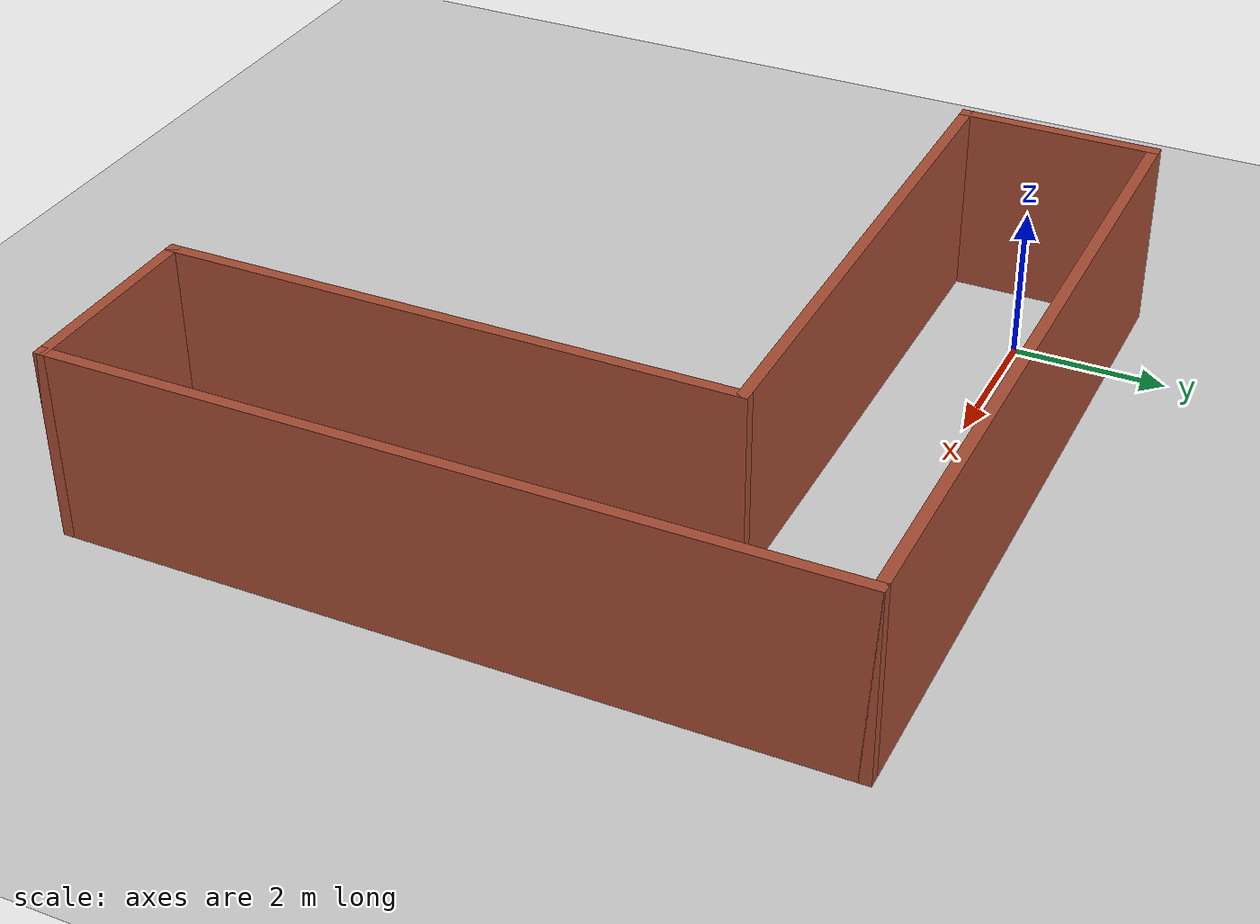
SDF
<sdf version="1.6">
 <world name="default">
  <light name="sun" type="directional">
   <pose>0 0 10 0 -0 0</pose>
   <diffuse>0.8 0.8 0.8 1</diffuse>
   <specular>0.2 0.2 0.2 1</specular>
   <attenuation>
    <range>1000</range>
    <constant>0.9</constant>
    <linear>0.01</linear>
    <quadratic>0.001</quadratic>
   </attenuation>
   <direction>-0.5 0.1 -0.9</direction>
  </light>
  <model name="ground_plane">
   <static>1</static>
   <link name="link">
    <collision name="collision">
     <geometry><plane><normal>0 0 1</normal><size>100 100</size></plane></geometry>
     <surface>
      <contact><collide_bitmask>65535</collide_bitmask></contact>
      <friction><ode><mu>100</mu><mu2>50</mu2></ode></friction>
     </surface>
    </collision>
    <visual name="visual">
     <cast_shadows>0</cast_shadows>
     <geometry><plane><normal>0 0 1</normal><size>100 100</size></plane></geometry>
     <material>
      <script><uri>file://media/materials/scripts/gazebo.material</uri><name>Gazebo/Grey</name></script>
     </material>
    </visual>
   </link>
  </model>
  <gravity>0 0 -9.8</gravity>
  <magnetic_field>6e-06 2.3e-05 -4.2e-05</magnetic_field>
  <atmosphere type="adiabatic"/>
  <physics name="default_physics" default="0" type="ode">
   <max_step_size>0.001</max_step_size>
   <real_time_factor>1</real_time_factor>
   <real_time_update_rate>1000</real_time_update_rate>
  </physics>
  <scene><ambient>0.4 0.4 0.4 1</ambient><background>0.7 0.7 0.7 1</background><shadows>1</shadows></scene>
  <spherical_coordinates>
   <surface_model>EARTH_WGS84</surface_model>
   <latitude_deg>0</latitude_deg>
   <longitude_deg>0</longitude_deg>
   <elevation>0</elevation>
   <heading_deg>0</heading_deg>
  </spherical_coordinates>
  <model name="L-Shape">
   <pose>3.5 -3.75 0 0 0 -1.57</pose>
   <link name="Wall_81">
    <collision name="Wall_81_Collision">
     <geometry><box><size>10 0.15 2.5</size></box></geometry>
     <pose>0 0 1.25 0 -0 0</pose>
    </collision>
    <visual name="Wall_81_Visual">
     <pose>0 0 1.25 0 -0 0</pose>
     <geometry><box><size>10 0.15 2.5</size></box></geometry>
     <material>
      <script><uri>file://media/materials/scripts/gazebo.material</uri><name>Gazebo/Bricks</name></script>
      <ambient>1 1 1 1</ambient>
     </material>
     <meta><layer>0</layer></meta>
    </visual>
    <pose>0 4.925 0 0 -0 0</pose>
   </link>
   <link name="Wall_82">
    <collision name="Wall_82_Collision">
     <geometry><box><size>2.65 0.15 2.5</size></box></geometry>
     <pose>0 0 1.25 0 -0 0</pose>
    </collision>
    <visual name="Wall_82_Visual">
     <pose>0 0 1.25 0 -0 0</pose>
     <geometry><box><size>2.65 0.15 2.5</size></box></geometry>
     <material>
      <script><uri>file://media/materials/scripts/gazebo.material</uri><name>Gazebo/Bricks</name></script>
      <ambient>1 1 1 1</ambient>
     </material>
     <meta><layer>0</layer></meta>
    </visual>
    <pose>4.925 3.675 0 0 -0 -1.5708</pose>
   </link>
   <link name="Wall_86">
    <collision name="Wall_86_Collision">
     <geometry><box><size>10 0.15 2.5</size></box></geometry>
     <pose>0 0 1.25 0 -0 0</pose>
    </collision>
    <visual name="Wall_86_Visual">
     <pose>0 0 1.25 0 -0 0</pose>
     <geometry><box><size>10 0.15 2.5</size></box></geometry>
     <material>
      <script><uri>file://media/materials/scripts/gazebo.material</uri><name>Gazebo/Bricks</name></script>
      <ambient>1 1 1 1</ambient>
     </material>
     <meta><layer>0</layer></meta>
    </visual>
    <pose>-4.925 0 0 0 -0 -1.5708</pose>
   </link>
   <link name="Wall_88">
    <collision name="Wall_88_Collision">
     <geometry><box><size>2.65 0.15 2.5</size></box></geometry>
     <pose>0 0 1.25 0 -0 0</pose>
    </collision>
    <visual name="Wall_88_Visual">
     <pose>0 0 1.25 0 -0 0</pose>
     <geometry><box><size>2.65 0.15 2.5</size></box></geometry>
     <material>
      <script><uri>file://media/materials/scripts/gazebo.material</uri><name>Gazebo/Bricks</name></script>
      <ambient>1 1 1 1</ambient>
     </material>
     <meta><layer>0</layer></meta>
    </visual>
    <pose>-3.675 -4.925 0 0 -0 0</pose>
   </link>
   <link name="Wall_90">
    <collision name="Wall_90_Collision">
     <geometry><box><size>7.5 0.15 2.5</size></box></geometry>
     <pose>0 0 1.25 0 -0 0</pose>
    </collision>
    <visual name="Wall_90_Visual">
     <pose>0 0 1.25 0 -0 0</pose>
     <geometry><box><size>7.5 0.15 2.5</size></box></geometry>
     <material>
      <script><uri>file://media/materials/scripts/gazebo.material</uri><name>Gazebo/Bricks</name></script>
      <ambient>1 1 1 1</ambient>
     </material>
     <meta><layer>0</layer></meta>
    </visual>
    <pose>1.25 2.425 0 0 -0 3.14159</pose>
   </link>
   <link name="Wall_91">
    <collision name="Wall_91_Collision">
     <geometry><box><size>7.5 0.15 2.5</size></box></geometry>
     <pose>0 0 1.25 0 -0 0</pose>
    </collision>
    <visual name="Wall_91_Visual">
     <pose>0 0 1.25 0 -0 0</pose>
     <geometry><box><size>7.5 0.15 2.5</size></box></geometry>
     <material>
      <script><uri>file://media/materials/scripts/gazebo.material</uri><name>Gazebo/Bricks</name></script>
      <ambient>1 1 1 1</ambient>
     </material>
     <meta><layer>0</layer></meta>
    </visual>
    <pose>-2.425 -1.25 0 0 -0 -1.5708</pose>
   </link>
   <static>1</static>
  </model>
 </world>
</sdf>
